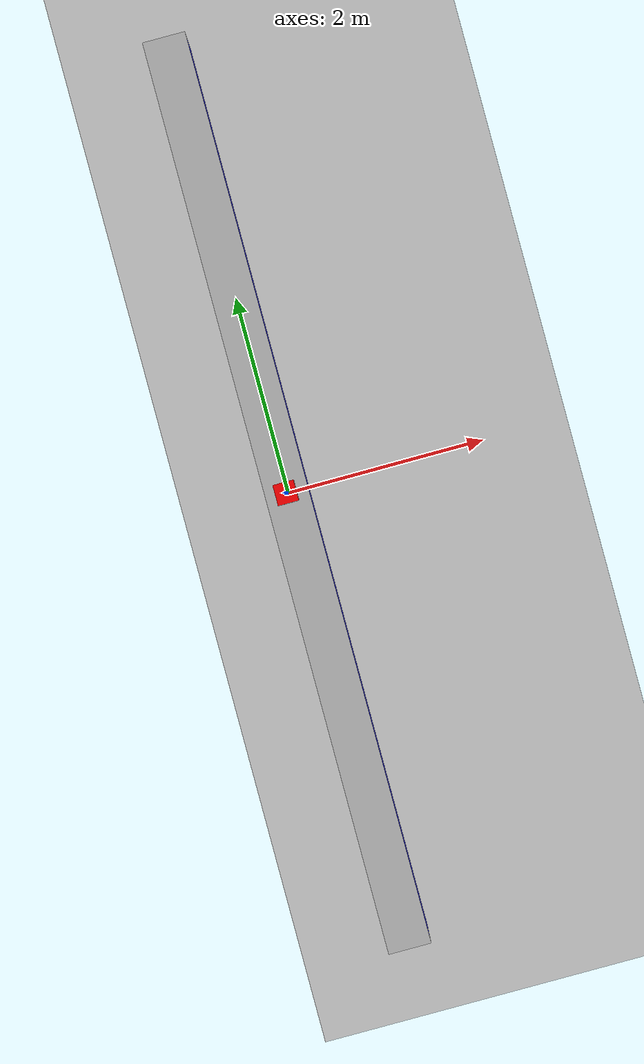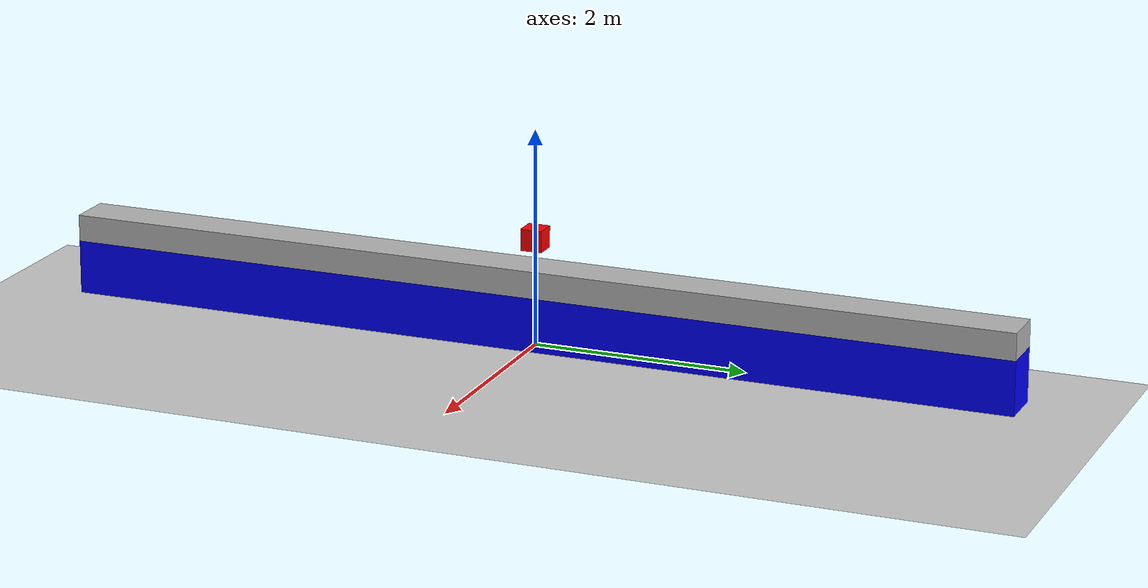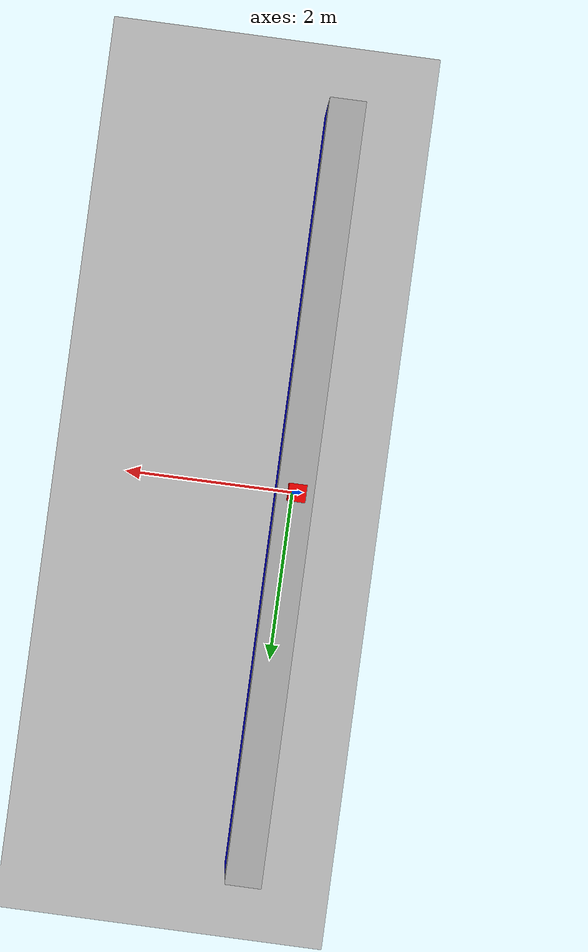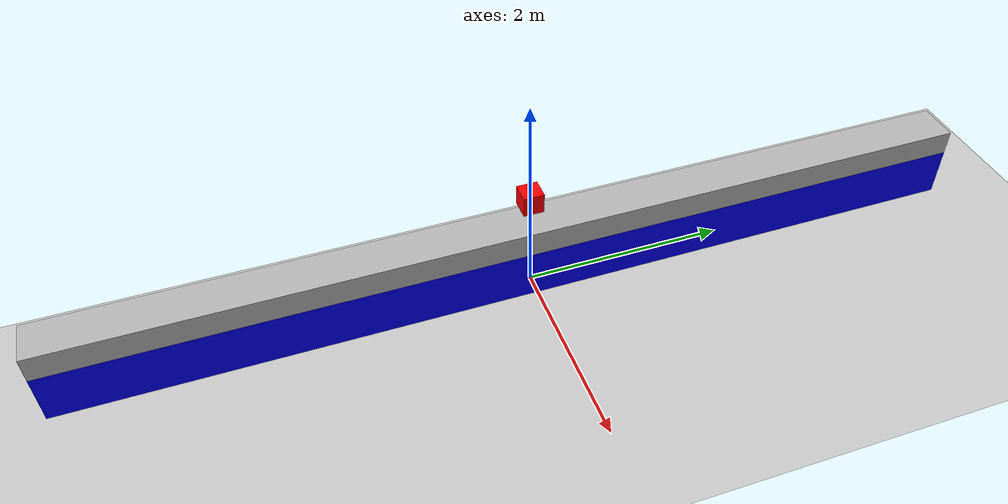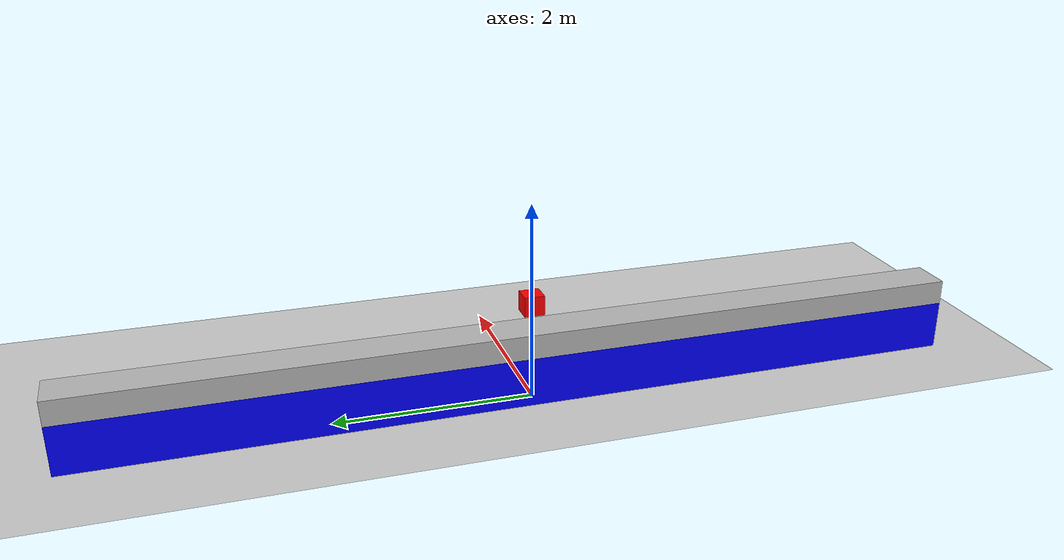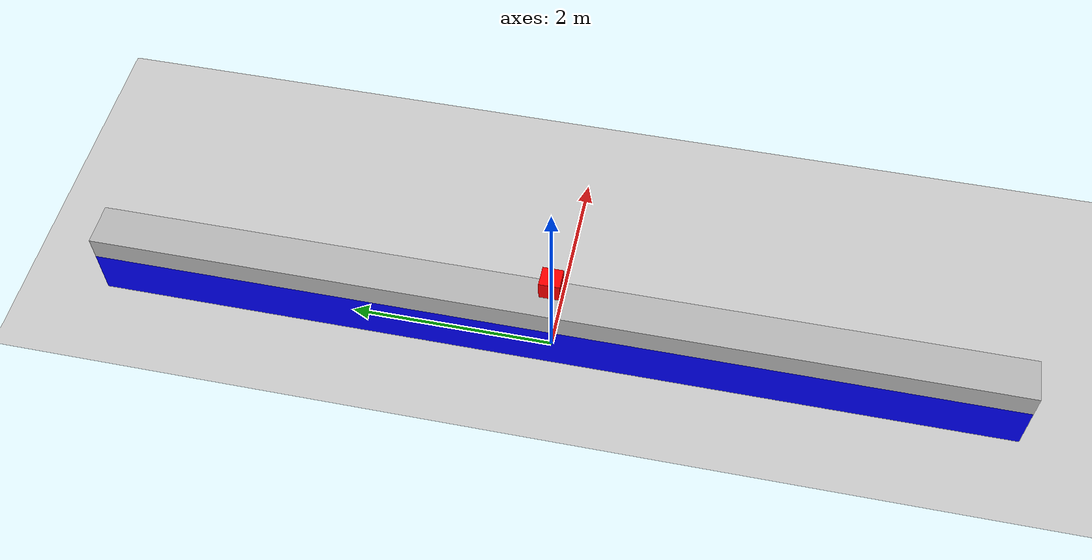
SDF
<?xml version="1.0" ?>
<!--
  Example usage:

  gz topic -t "conveyor_belt/cmd" -m gz.msgs.Double -p "data: 2.0"

-->
<sdf version="1.6">
  <world name="conveyor">
    <physics name="1ms" type="ignored">
      <max_step_size>0.001</max_step_size>
      <real_time_factor>1.0</real_time_factor>
    </physics>
    <plugin
      filename="gz-sim-physics-system"
      name="gz::sim::systems::Physics">
    </plugin>
    <plugin
      filename="gz-sim-user-commands-system"
      name="gz::sim::systems::UserCommands">
    </plugin>
    <plugin
      filename="gz-sim-scene-broadcaster-system"
      name="gz::sim::systems::SceneBroadcaster">
    </plugin>

    <scene>
      <ambient>1.0 1.0 1.0</ambient>
      <background>0.8 0.8 0.8</background>
      <grid>true</grid>
    </scene>

    <light type="directional" name="sun">
      <cast_shadows>true</cast_shadows>
      <pose>0 0 10 0 0 0</pose>
      <diffuse>0.8 0.8 0.8 1</diffuse>
      <specular>0.8 0.8 0.8 1</specular>
      <attenuation>
        <range>1000</range>
        <constant>0.9</constant>
        <linear>0.01</linear>
        <quadratic>0.001</quadratic>
      </attenuation>
      <direction>-0.5 0.1 -0.9</direction>
    </light>

    <model name="ground_plane">
      <static>true</static>
      <link name="link">
        <collision name="collision">
          <geometry>
            <plane>
              <normal>0 0 1</normal>
              <size>100 100</size>
            </plane>
          </geometry>
        </collision>
        <visual name="visual">
          <geometry>
            <plane>
              <normal>0 0 1</normal>
              <size>100 100</size>
            </plane>
          </geometry>
          <material>
            <ambient>0.8 0.8 0.8 1</ambient>
            <diffuse>0.8 0.8 0.8 1</diffuse>
            <specular>0.8 0.8 0.8 1</specular>
          </material>
        </visual>
      </link>
    </model>

      <model name="box">
        <static>false</static>
        <link name="link">
          <pose>0 0 1.0 0 0 0</pose>
          <inertial>
            <inertia>
              <ixx>0.000016</ixx>
              <ixy>0</ixy>
              <ixz>0</ixz>
              <iyy>0.000016</iyy>
              <iyz>0</iyz>
              <izz>0.000016</izz>
            </inertia>
            <mass>1</mass>
          </inertial>

         <collision name="collision">
            <geometry>
              <box>
                <size>0.2 0.2 .2</size>
              </box>
            </geometry>
          </collision>
          <visual name="visual">
            <geometry>
              <box>
                <size>0.2 0.2 .2</size>
              </box>
            </geometry>
            <material>
              <diffuse>1 0 0</diffuse>
            </material>
          </visual>
        </link>
      </model>

      <model name="conveyor_belt">
        <static>false</static>

        <link name="fixed_base">
          <pose>0 0 0.25 0 0 -1.57079</pose>
          <collision name="collision">
            <geometry>
              <box>
                <size>9 0.42 .5</size>
              </box>
            </geometry>
          </collision>
          <visual name="visual">
            <geometry>
              <box>
                <size>9 0.42 .5</size>
              </box>
            </geometry>
            <material>
              <diffuse>0 0 1</diffuse>
            </material>
          </visual>
	      </link>

        <link name="belt">
          <pose>0 0 0.625 0 0 -1.57079</pose>
          <inertial>
            <inertia>
              <ixx>3.8185</ixx>
              <ixy>0</ixy>
              <ixz>0</ixz>
              <iyy>1781.5</iyy>
              <iyz>0</iyz>
              <izz>1784.72</izz>
            </inertia>
            <mass>100</mass>
          </inertial>

          <!-- Visual for debugging -->
          <visual name="belt_visual">
            <geometry>
              <box>
                <size>9 0.42 .25</size>
              </box>
            </geometry>
          </visual>

          <collision name="belt_collision">
            <geometry>
              <box>
                <size>9 0.42 .25</size>
              </box>
            </geometry>
            <surface>
              <friction>
                <ode>
                  <mu>1.0</mu>
                  <mu2>1.0</mu2>
                </ode>
                <torsional>
                  <coefficient>1000.0</coefficient>
                  <patch_radius>0.1</patch_radius>
                </torsional>
              </friction>
            </surface>
          </collision>
        </link>

        <joint name="belt_joint" type="prismatic">
          <parent>fixed_base</parent>
          <child>belt</child>
          <axis>
            <xyz>1 0 0</xyz>
            <limit>
              <lower>0</lower>
              <upper>0.4</upper>
              <effort>1</effort>
              <velocity>5</velocity>
            </limit>
          </axis>
        </joint>
        <plugin
          filename="gz-sim-conveyor-belt-system"
          name="gz::sim::systems::ConveyorBelt">
          <joint_name>belt_joint</joint_name>
          <topic>conveyor_belt/cmd</topic>
        </plugin>
      </model>
  </world>
</sdf>
